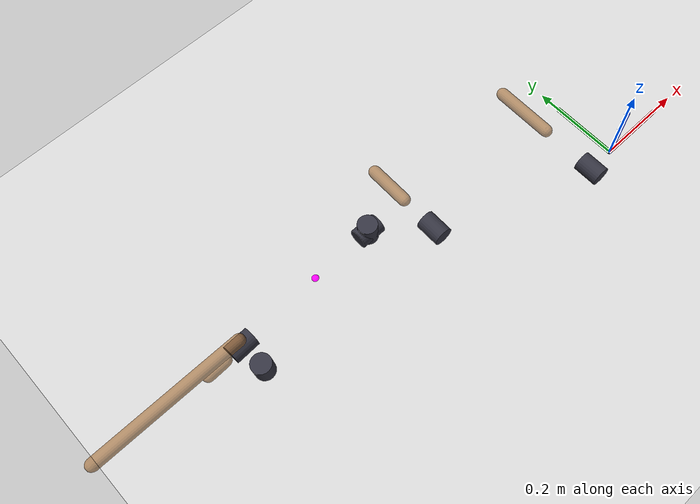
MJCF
<?xml version="1.0" encoding="utf-8"?>
<mujoco model="arm6dof_dh2mujoco">
  <compiler angle="radian" autolimits="true" inertiafromgeom="auto" />
  <option timestep="0.002" integrator="implicitfast" gravity="0 0 -9.81" />
  <statistic center="0.15 0 0.15" extent="1.2" />
  <default>
    <joint type="hinge" damping="2" armature="0.05" frictionloss="0.1" />
    <geom contype="0" conaffinity="0" friction="1 0.5 0.05" />
    <position ctrllimited="true" />
    <site size="0.008" rgba="1 1 0 1" type="sphere" />
  </default>
  <worldbody>
    <geom name="ground" type="plane" pos="0 0 -0.02" size="1.2 1.2 0.02" rgba="0.82 0.82 0.82 1" />
    <geom name="world_x" type="capsule" fromto="0 0 0 0.15 0 0" size="0.005" rgba="1 0 0 1" contype="0" conaffinity="0" group="0" />
    <geom name="world_y" type="capsule" fromto="0 0 0 0 0.15 0" size="0.005" rgba="0 0.8 0 1" contype="0" conaffinity="0" group="0" />
    <geom name="world_z" type="capsule" fromto="0 0 0 0 0 0.15" size="0.005" rgba="0.1 0.2 1 1" contype="0" conaffinity="0" group="0" />
    <body name="robot_base" pos="0 0 0">
      <inertial pos="0 0 0" mass="0.01" diaginertia="1e-6 1e-6 1e-6" />
      <body name="pre_1" pos="-0.061099 0 0" quat="-0.00191047023 0.00190673066 0.706411142 0.70779659">
        <inertial pos="0 0 0" mass="0.02" diaginertia="1e-5 1e-5 1e-5" />
        <joint name="joint1" type="hinge" axis="0 0 1" range="-3.14159265 3.14159265" />
        <geom name="joint1_g" type="cylinder" fromto="0 0 -0.028 0 0 0.028" size="0.022" mass="0.05" rgba="0.2 0.2 0.25 1" contype="2" conaffinity="1" />
        <geom name="pre1_axis_x" type="capsule" fromto="0 0 0 0.06 0 0" size="0.0042" rgba="1 0 0 1" contype="0" conaffinity="0" group="3" />
        <geom name="pre1_axis_y" type="capsule" fromto="0 0 0 0 0.06 0" size="0.0042" rgba="0 0.8 0 1" contype="0" conaffinity="0" group="3" />
        <geom name="pre1_axis_z" type="capsule" fromto="0 0 0 0 0 0.06" size="0.0042" rgba="0.1 0.2 1 1" contype="0" conaffinity="0" group="3" />
        <body name="link1" pos="0 0 0.132184" quat="1 0 0 0">
          <inertial pos="0 0 0" mass="0.08" diaginertia="3e-5 3e-5 3e-5" />
          <geom name="link1_geom" type="capsule" fromto="0 0 0 0 0 0.132184" size="0.014" rgba="0.65 0.45 0.25 0.7" contype="2" conaffinity="1" />
          <body name="pre_2" pos="0.345932 0 0" quat="0.999996892 -0.00220049671 2.57898333e-06 0.00117199689">
            <inertial pos="0 0 0" mass="0.02" diaginertia="1e-5 1e-5 1e-5" />
            <joint name="joint2" type="hinge" axis="0 0 1" range="-3.14159265 3.14159265" />
            <geom name="joint2_g" type="cylinder" fromto="0 0 -0.028 0 0 0.028" size="0.022" mass="0.05" rgba="0.2 0.2 0.25 1" contype="2" conaffinity="1" />
            <geom name="pre2_axis_x" type="capsule" fromto="0 0 0 0.06 0 0" size="0.0042" rgba="1 0 0 1" contype="0" conaffinity="0" group="3" />
            <geom name="pre2_axis_y" type="capsule" fromto="0 0 0 0 0.06 0" size="0.0042" rgba="0 0.8 0 1" contype="0" conaffinity="0" group="3" />
            <geom name="pre2_axis_z" type="capsule" fromto="0 0 0 0 0 0.06" size="0.0042" rgba="0.1 0.2 1 1" contype="0" conaffinity="0" group="3" />
            <body name="link2" pos="0 0 0.091502" quat="1 0 0 0">
              <inertial pos="0 0 0" mass="0.08" diaginertia="3e-5 3e-5 3e-5" />
              <geom name="link2_geom" type="capsule" fromto="0 0 0 0 0 0.091502" size="0.014" rgba="0.65 0.45 0.25 0.7" contype="2" conaffinity="1" />
              <body name="pre_3" pos="0.103901 0 0" quat="0.49727162 0.499246059 0.502727266 -0.500739059">
                <inertial pos="0 0 0" mass="0.02" diaginertia="1e-5 1e-5 1e-5" />
                <joint name="joint3" type="hinge" axis="0 0 1" range="-3.14159265 3.14159265" />
                <geom name="joint3_g" type="cylinder" fromto="0 0 -0.028 0 0 0.028" size="0.022" mass="0.05" rgba="0.2 0.2 0.25 1" contype="2" conaffinity="1" />
                <geom name="pre3_axis_x" type="capsule" fromto="0 0 0 0.06 0 0" size="0.0042" rgba="1 0 0 1" contype="0" conaffinity="0" group="3" />
                <geom name="pre3_axis_y" type="capsule" fromto="0 0 0 0 0.06 0" size="0.0042" rgba="0 0.8 0 1" contype="0" conaffinity="0" group="3" />
                <geom name="pre3_axis_z" type="capsule" fromto="0 0 0 0 0 0.06" size="0.0042" rgba="0.1 0.2 1 1" contype="0" conaffinity="0" group="3" />
                <body name="link3" pos="0 0 0.005" quat="1 0 0 0">
                  <inertial pos="0 0 0" mass="0.08" diaginertia="3e-5 3e-5 3e-5" />
                  <geom name="link3_geom" type="capsule" fromto="0 0 0 0 0 0.005" size="0.014" rgba="0.65 0.45 0.25 0.7" contype="2" conaffinity="1" />
                  <body name="pre_4" pos="-0.000588 0 0" quat="0.703282019 -0.710895795 -0.00330177926 -0.00326641682">
                    <inertial pos="0 0 0" mass="0.02" diaginertia="1e-5 1e-5 1e-5" />
                    <joint name="joint4" type="hinge" axis="0 0 1" range="-3.14159265 3.14159265" />
                    <geom name="joint4_g" type="cylinder" fromto="0 0 -0.028 0 0 0.028" size="0.022" mass="0.05" rgba="0.2 0.2 0.25 1" contype="2" conaffinity="1" />
                    <geom name="pre4_axis_x" type="capsule" fromto="0 0 0 0.06 0 0" size="0.0042" rgba="1 0 0 1" contype="0" conaffinity="0" group="3" />
                    <geom name="pre4_axis_y" type="capsule" fromto="0 0 0 0 0.06 0" size="0.0042" rgba="0 0.8 0 1" contype="0" conaffinity="0" group="3" />
                    <geom name="pre4_axis_z" type="capsule" fromto="0 0 0 0 0 0.06" size="0.0042" rgba="0.1 0.2 1 1" contype="0" conaffinity="0" group="3" />
                    <body name="link4" pos="0 0 0.344628" quat="1 0 0 0">
                      <inertial pos="0 0 0" mass="0.08" diaginertia="3e-5 3e-5 3e-5" />
                      <geom name="link4_geom" type="capsule" fromto="0 0 0 0 0 0.344628" size="0.014" rgba="0.65 0.45 0.25 0.7" contype="2" conaffinity="1" />
                      <body name="pre_5" pos="0.074472 0 0" quat="0.013234257 -0.0130129832 -0.700999927 -0.712919784">
                        <inertial pos="0 0 0" mass="0.02" diaginertia="1e-5 1e-5 1e-5" />
                        <joint name="joint5" type="hinge" axis="0 0 1" range="-3.14159265 3.14159265" />
                        <geom name="joint5_g" type="cylinder" fromto="0 0 -0.028 0 0 0.028" size="0.022" mass="0.05" rgba="0.2 0.2 0.25 1" contype="2" conaffinity="1" />
                        <geom name="pre5_axis_x" type="capsule" fromto="0 0 0 0.06 0 0" size="0.0042" rgba="1 0 0 1" contype="0" conaffinity="0" group="3" />
                        <geom name="pre5_axis_y" type="capsule" fromto="0 0 0 0 0.06 0" size="0.0042" rgba="0 0.8 0 1" contype="0" conaffinity="0" group="3" />
                        <geom name="pre5_axis_z" type="capsule" fromto="0 0 0 0 0 0.06" size="0.0042" rgba="0.1 0.2 1 1" contype="0" conaffinity="0" group="3" />
                        <body name="link5" pos="0 0 -0.024818" quat="1 0 0 0">
                          <inertial pos="0 0 0" mass="0.08" diaginertia="3e-5 3e-5 3e-5" />
                          <geom name="link5_geom" type="capsule" fromto="0 0 0 0 0 -0.024818" size="0.014" rgba="0.65 0.45 0.25 0.7" contype="2" conaffinity="1" />
                          <body name="pre_6" pos="0.070882 0 0" quat="0.509697788 -0.484829268 0.489847765 0.514973701">
                            <inertial pos="0 0 0" mass="0.02" diaginertia="1e-5 1e-5 1e-5" />
                            <joint name="joint6" type="hinge" axis="0 0 1" range="-3.14159265 3.14159265" />
                            <geom name="joint6_g" type="cylinder" fromto="0 0 -0.028 0 0 0.028" size="0.022" mass="0.05" rgba="0.2 0.2 0.25 1" contype="2" conaffinity="1" />
                            <geom name="pre6_axis_x" type="capsule" fromto="0 0 0 0.06 0 0" size="0.0042" rgba="1 0 0 1" contype="0" conaffinity="0" group="3" />
                            <geom name="pre6_axis_y" type="capsule" fromto="0 0 0 0 0.06 0" size="0.0042" rgba="0 0.8 0 1" contype="0" conaffinity="0" group="3" />
                            <geom name="pre6_axis_z" type="capsule" fromto="0 0 0 0 0 0.06" size="0.0042" rgba="0.1 0.2 1 1" contype="0" conaffinity="0" group="3" />
                            <body name="link6" pos="0 0 0.042524" quat="1 0 0 0">
                              <inertial pos="0 0 0" mass="0.08" diaginertia="3e-5 3e-5 3e-5" />
                              <geom name="link6_geom" type="capsule" fromto="0 0 0 0 0 0.042524" size="0.014" rgba="0.65 0.45 0.25 0.7" contype="2" conaffinity="1" />
                              <body name="ee_pre_1" pos="0 0 0" quat="0.707106897 0 0 -0.707106666">
                                <inertial pos="0 0 0" mass="0.01" diaginertia="1e-6 1e-6 1e-6" />
                                <body name="ee_post_1" pos="0 0 -0.2445" quat="1 0 0 0">
                                  <inertial pos="0 0 0" mass="0.01" diaginertia="1e-6 1e-6 1e-6" />
                                  <site name="ee" size="0.012" rgba="1 0 1 1" />
                                </body>
                              </body>
                            </body>
                          </body>
                        </body>
                      </body>
                    </body>
                  </body>
                </body>
              </body>
            </body>
          </body>
        </body>
      </body>
    </body>
  </worldbody>
  <actuator>
    <position name="q1_pos" joint="joint1" kp="80" ctrlrange="-3.14159265 3.14159265" ctrllimited="true" />
    <position name="q2_pos" joint="joint2" kp="80" ctrlrange="-3.14159265 3.14159265" ctrllimited="true" />
    <position name="q3_pos" joint="joint3" kp="80" ctrlrange="-3.14159265 3.14159265" ctrllimited="true" />
    <position name="q4_pos" joint="joint4" kp="60" ctrlrange="-3.14159265 3.14159265" ctrllimited="true" />
    <position name="q5_pos" joint="joint5" kp="45" ctrlrange="-3.14159265 3.14159265" ctrllimited="true" />
    <position name="q6_pos" joint="joint6" kp="35" ctrlrange="-3.14159265 3.14159265" ctrllimited="true" />
  </actuator>
  <sensor>
    <jointpos name="q1" joint="joint1" />
    <jointvel name="dq1" joint="joint1" />
    <jointpos name="q2" joint="joint2" />
    <jointvel name="dq2" joint="joint2" />
    <jointpos name="q3" joint="joint3" />
    <jointvel name="dq3" joint="joint3" />
    <jointpos name="q4" joint="joint4" />
    <jointvel name="dq4" joint="joint4" />
    <jointpos name="q5" joint="joint5" />
    <jointvel name="dq5" joint="joint5" />
    <jointpos name="q6" joint="joint6" />
    <jointvel name="dq6" joint="joint6" />
    <framepos name="ee_pos" objtype="site" objname="ee" />
    <framequat name="ee_quat" objtype="site" objname="ee" />
  </sensor>
  <keyframe>
    <key name="home" qpos="0 0 0 0 0 0" ctrl="0 0 0 0 0 0" />
  </keyframe>
</mujoco>
